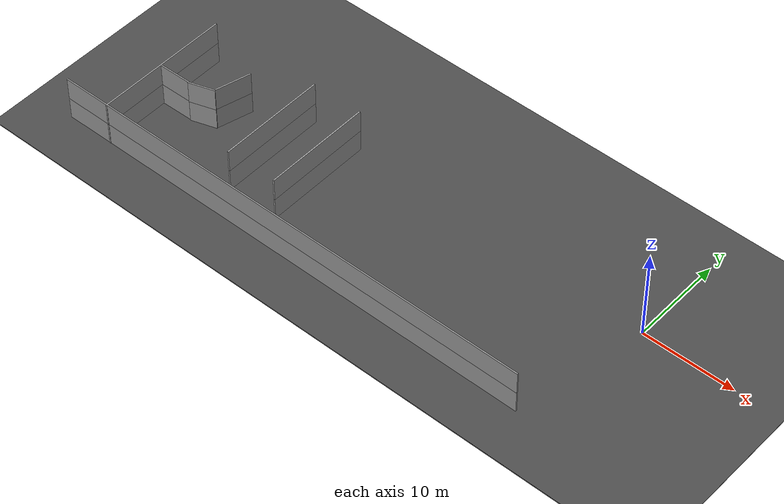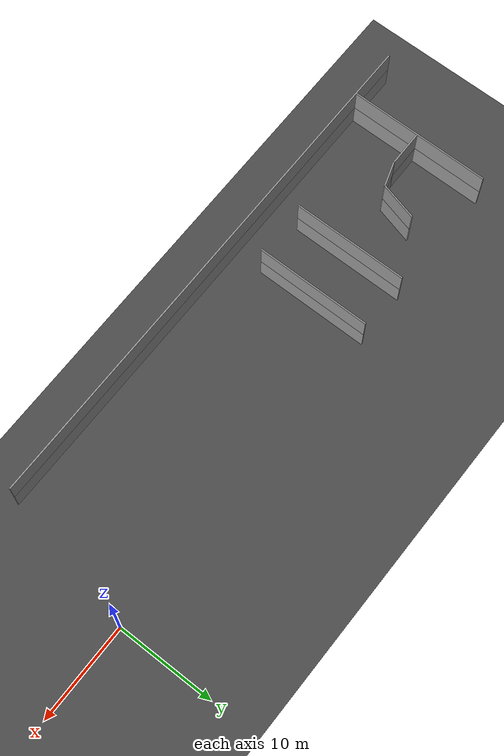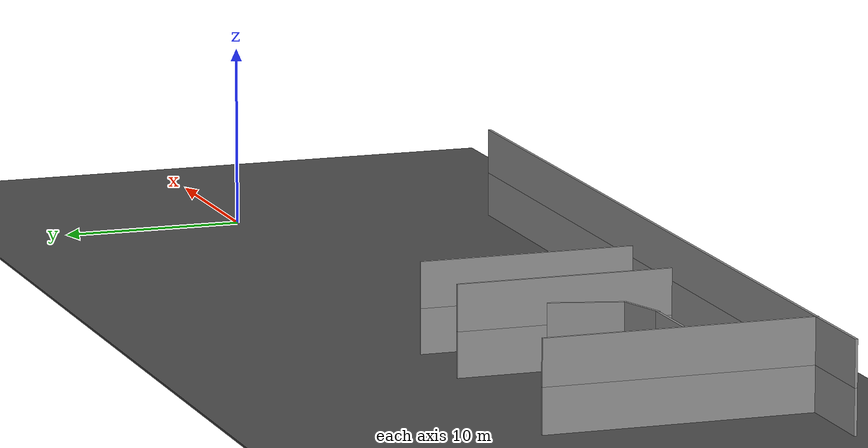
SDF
<sdf version="1.6">
 <world name="default">
  <model name="ground_plane">
   <static>1</static>
   <link name="link">
    <collision name="collision">
     <geometry><plane><normal>0 0 1</normal><size>100 100</size></plane></geometry>
     <surface>
      <contact><collide_bitmask>65535</collide_bitmask></contact>
      <friction><ode><mu>100</mu><mu2>50</mu2></ode></friction>
     </surface>
    </collision>
    <visual name="visual">
     <cast_shadows>0</cast_shadows>
     <geometry><plane><normal>0 0 1</normal><size>100 100</size></plane></geometry>
     <material>
      <script><uri>file://media/materials/scripts/gazebo.material</uri><name>Gazebo/Grey</name></script>
     </material>
    </visual>
   </link>
  </model>
  <model name="asphalt_plane">
   <static>1</static>
   <link name="link">
    <collision name="collision"><geometry><box><size>200 200 0.1</size></box></geometry></collision>
    <visual name="visual">
     <cast_shadows>0</cast_shadows>
     <geometry><box><size>200 200 0.1</size></box></geometry>
     <material>
      <script>
       <uri>model://asphalt_plane/materials/scripts</uri>
       <uri>model://asphalt_plane/materials/textures</uri>
       <name>vrc/asphalt</name>
      </script>
     </material>
    </visual>
   </link>
  </model>
  <model name="Biggest">
   <link name="Wall_101">
    <pose>-20.1199 -7.02638 0 0 0 -3.12807</pose>
    <visual name="Wall_101_Visual">
     <pose>0 0 1.25 0 -0 0</pose>
     <geometry><box><size>3.63056 0.15 2.5</size></box></geometry>
     <material>
      <script><uri>file://media/materials/scripts/gazebo.material</uri><name>Gazebo/Grey</name></script>
      <ambient>1 1 1 1</ambient>
     </material>
     <meta><layer>0</layer></meta>
    </visual>
    <collision name="Wall_101_Collision">
     <pose>0 0 1.25 0 -0 0</pose>
     <geometry><box><size>3.63056 0.15 2.5</size></box></geometry>
     <surface>
      <friction>
       <ode><mu>1</mu><mu2>1</mu2><fdir1>0 0 0</fdir1><slip1>0</slip1><slip2>0</slip2></ode>
       <torsional>
        <coefficient>1</coefficient>
        <patch_radius>0</patch_radius>
        <surface_radius>0</surface_radius>
        <use_patch_radius>1</use_patch_radius>
        <ode><slip>0</slip></ode>
       </torsional>
      </friction>
      <bounce><restitution_coefficient>0</restitution_coefficient><threshold>1e+06</threshold></bounce>
      <contact>
       <collide_without_contact>0</collide_without_contact>
       <collide_without_contact_bitmask>1</collide_without_contact_bitmask>
       <collide_bitmask>1</collide_bitmask>
       <ode>
        <soft_cfm>0</soft_cfm>
        <soft_erp>0.2</soft_erp>
        <kp>1e+13</kp>
        <kd>1</kd>
        <max_vel>0.01</max_vel>
        <min_depth>0</min_depth>
       </ode>
       <bullet>
        <split_impulse>1</split_impulse>
        <split_impulse_penetration_threshold>-0.01</split_impulse_penetration_threshold>
        <soft_cfm>0</soft_cfm>
        <soft_erp>0.2</soft_erp>
        <kp>1e+13</kp>
        <kd>1</kd>
       </bullet>
      </contact>
     </surface>
    </collision>
   </link>
   <link name="Wall_103">
    <pose>-9.33292 -5.35177 0 0 0 -1.5708</pose>
    <visual name="Wall_103_Visual">
     <pose>0 0 1.25 0 -0 0</pose>
     <geometry><box><size>11.75 0.15 2.5</size></box></geometry>
     <material>
      <script><uri>file://media/materials/scripts/gazebo.material</uri><name>Gazebo/Grey</name></script>
      <ambient>1 1 1 1</ambient>
     </material>
     <meta><layer>0</layer></meta>
    </visual>
    <collision name="Wall_103_Collision">
     <pose>0 0 1.25 0 -0 0</pose>
     <geometry><box><size>11.75 0.15 2.5</size></box></geometry>
     <surface>
      <friction>
       <ode><mu>1</mu><mu2>1</mu2><fdir1>0 0 0</fdir1><slip1>0</slip1><slip2>0</slip2></ode>
       <torsional>
        <coefficient>1</coefficient>
        <patch_radius>0</patch_radius>
        <surface_radius>0</surface_radius>
        <use_patch_radius>1</use_patch_radius>
        <ode><slip>0</slip></ode>
       </torsional>
      </friction>
      <bounce><restitution_coefficient>0</restitution_coefficient><threshold>1e+06</threshold></bounce>
      <contact>
       <collide_without_contact>0</collide_without_contact>
       <collide_without_contact_bitmask>1</collide_without_contact_bitmask>
       <collide_bitmask>1</collide_bitmask>
       <ode>
        <soft_cfm>0</soft_cfm>
        <soft_erp>0.2</soft_erp>
        <kp>1e+13</kp>
        <kd>1</kd>
        <max_vel>0.01</max_vel>
        <min_depth>0</min_depth>
       </ode>
       <bullet>
        <split_impulse>1</split_impulse>
        <split_impulse_penetration_threshold>-0.01</split_impulse_penetration_threshold>
        <soft_cfm>0</soft_cfm>
        <soft_erp>0.2</soft_erp>
        <kp>1e+13</kp>
        <kd>1</kd>
       </bullet>
      </contact>
     </surface>
    </collision>
   </link>
   <link name="Wall_106">
    <pose>-3.73234 -5.28954 0 0 0 -1.5708</pose>
    <visual name="Wall_106_Visual">
     <pose>0 0 1.25 0 -0 0</pose>
     <geometry><box><size>11.75 0.15 2.5</size></box></geometry>
     <material>
      <script><uri>file://media/materials/scripts/gazebo.material</uri><name>Gazebo/Grey</name></script>
      <ambient>1 1 1 1</ambient>
     </material>
     <meta><layer>0</layer></meta>
    </visual>
    <collision name="Wall_106_Collision">
     <pose>0 0 1.25 0 -0 0</pose>
     <geometry><box><size>11.75 0.15 2.5</size></box></geometry>
     <surface>
      <friction>
       <ode><mu>1</mu><mu2>1</mu2><fdir1>0 0 0</fdir1><slip1>0</slip1><slip2>0</slip2></ode>
       <torsional>
        <coefficient>1</coefficient>
        <patch_radius>0</patch_radius>
        <surface_radius>0</surface_radius>
        <use_patch_radius>1</use_patch_radius>
        <ode><slip>0</slip></ode>
       </torsional>
      </friction>
      <bounce><restitution_coefficient>0</restitution_coefficient><threshold>1e+06</threshold></bounce>
      <contact>
       <collide_without_contact>0</collide_without_contact>
       <collide_without_contact_bitmask>1</collide_without_contact_bitmask>
       <collide_bitmask>1</collide_bitmask>
       <ode>
        <soft_cfm>0</soft_cfm>
        <soft_erp>0.2</soft_erp>
        <kp>1e+13</kp>
        <kd>1</kd>
        <max_vel>0.01</max_vel>
        <min_depth>0</min_depth>
       </ode>
       <bullet>
        <split_impulse>1</split_impulse>
        <split_impulse_penetration_threshold>-0.01</split_impulse_penetration_threshold>
        <soft_cfm>0</soft_cfm>
        <soft_erp>0.2</soft_erp>
        <kp>1e+13</kp>
        <kd>1</kd>
       </bullet>
      </contact>
     </surface>
    </collision>
   </link>
   <link name="Wall_120">
    <pose>-0.021436 -14.1647 2.5 0 -0 3.14159</pose>
    <visual name="Wall_120_Visual">
     <pose>0 0 1.25 0 -0 0</pose>
     <geometry><box><size>54.5 0.15 2.5</size></box></geometry>
     <material>
      <script><uri>file://media/materials/scripts/gazebo.material</uri><name>Gazebo/Grey</name></script>
      <ambient>1 1 1 1</ambient>
     </material>
     <meta><layer>1</layer></meta>
    </visual>
    <collision name="Wall_120_Collision">
     <pose>0 0 1.25 0 -0 0</pose>
     <geometry><box><size>54.5 0.15 2.5</size></box></geometry>
     <surface>
      <friction>
       <ode><mu>1</mu><mu2>1</mu2><fdir1>0 0 0</fdir1><slip1>0</slip1><slip2>0</slip2></ode>
       <torsional>
        <coefficient>1</coefficient>
        <patch_radius>0</patch_radius>
        <surface_radius>0</surface_radius>
        <use_patch_radius>1</use_patch_radius>
        <ode><slip>0</slip></ode>
       </torsional>
      </friction>
      <bounce><restitution_coefficient>0</restitution_coefficient><threshold>1e+06</threshold></bounce>
      <contact>
       <collide_without_contact>0</collide_without_contact>
       <collide_without_contact_bitmask>1</collide_without_contact_bitmask>
       <collide_bitmask>1</collide_bitmask>
       <ode>
        <soft_cfm>0</soft_cfm>
        <soft_erp>0.2</soft_erp>
        <kp>1e+13</kp>
        <kd>1</kd>
        <max_vel>0.01</max_vel>
        <min_depth>0</min_depth>
       </ode>
       <bullet>
        <split_impulse>1</split_impulse>
        <split_impulse_penetration_threshold>-0.01</split_impulse_penetration_threshold>
        <soft_cfm>0</soft_cfm>
        <soft_erp>0.2</soft_erp>
        <kp>1e+13</kp>
        <kd>1</kd>
       </bullet>
      </contact>
     </surface>
    </collision>
   </link>
   <link name="Wall_124">
    <pose>-22.0129 -6.89098 2.5 0 0 -1.5708</pose>
    <visual name="Wall_124_Visual">
     <pose>0 0 1.25 0 -0 0</pose>
     <geometry><box><size>14.75 0.15 2.5</size></box></geometry>
     <material>
      <script><uri>file://media/materials/scripts/gazebo.material</uri><name>Gazebo/Grey</name></script>
      <ambient>1 1 1 1</ambient>
     </material>
     <meta><layer>1</layer></meta>
    </visual>
    <collision name="Wall_124_Collision">
     <pose>0 0 1.25 0 -0 0</pose>
     <geometry><box><size>14.75 0.15 2.5</size></box></geometry>
     <surface>
      <friction>
       <ode><mu>1</mu><mu2>1</mu2><fdir1>0 0 0</fdir1><slip1>0</slip1><slip2>0</slip2></ode>
       <torsional>
        <coefficient>1</coefficient>
        <patch_radius>0</patch_radius>
        <surface_radius>0</surface_radius>
        <use_patch_radius>1</use_patch_radius>
        <ode><slip>0</slip></ode>
       </torsional>
      </friction>
      <bounce><restitution_coefficient>0</restitution_coefficient><threshold>1e+06</threshold></bounce>
      <contact>
       <collide_without_contact>0</collide_without_contact>
       <collide_without_contact_bitmask>1</collide_without_contact_bitmask>
       <collide_bitmask>1</collide_bitmask>
       <ode>
        <soft_cfm>0</soft_cfm>
        <soft_erp>0.2</soft_erp>
        <kp>1e+13</kp>
        <kd>1</kd>
        <max_vel>0.01</max_vel>
        <min_depth>0</min_depth>
       </ode>
       <bullet>
        <split_impulse>1</split_impulse>
        <split_impulse_penetration_threshold>-0.01</split_impulse_penetration_threshold>
        <soft_cfm>0</soft_cfm>
        <soft_erp>0.2</soft_erp>
        <kp>1e+13</kp>
        <kd>1</kd>
       </bullet>
      </contact>
     </surface>
    </collision>
   </link>
   <link name="Wall_126">
    <pose>-15.3323 -4.31689 2.5 0 0 -1.83306</pose>
    <visual name="Wall_126_Visual">
     <pose>0 0 1.25 0 -0 0</pose>
     <geometry><box><size>4.00187 0.15 2.5</size></box></geometry>
     <material>
      <script><uri>file://media/materials/scripts/gazebo.material</uri><name>Gazebo/Grey</name></script>
      <ambient>1 1 1 1</ambient>
     </material>
     <meta><layer>1</layer></meta>
    </visual>
    <collision name="Wall_126_Collision">
     <pose>0 0 1.25 0 -0 0</pose>
     <geometry><box><size>4.00187 0.15 2.5</size></box></geometry>
     <surface>
      <friction>
       <ode><mu>1</mu><mu2>1</mu2><fdir1>0 0 0</fdir1><slip1>0</slip1><slip2>0</slip2></ode>
       <torsional>
        <coefficient>1</coefficient>
        <patch_radius>0</patch_radius>
        <surface_radius>0</surface_radius>
        <use_patch_radius>1</use_patch_radius>
        <ode><slip>0</slip></ode>
       </torsional>
      </friction>
      <bounce><restitution_coefficient>0</restitution_coefficient><threshold>1e+06</threshold></bounce>
      <contact>
       <collide_without_contact>0</collide_without_contact>
       <collide_without_contact_bitmask>1</collide_without_contact_bitmask>
       <collide_bitmask>1</collide_bitmask>
       <ode>
        <soft_cfm>0</soft_cfm>
        <soft_erp>0.2</soft_erp>
        <kp>1e+13</kp>
        <kd>1</kd>
        <max_vel>0.01</max_vel>
        <min_depth>0</min_depth>
       </ode>
       <bullet>
        <split_impulse>1</split_impulse>
        <split_impulse_penetration_threshold>-0.01</split_impulse_penetration_threshold>
        <soft_cfm>0</soft_cfm>
        <soft_erp>0.2</soft_erp>
        <kp>1e+13</kp>
        <kd>1</kd>
       </bullet>
      </contact>
     </surface>
    </collision>
   </link>
   <link name="Wall_127">
    <pose>-17.1059 -6.63697 2.5 0 0 -2.82822</pose>
    <visual name="Wall_127_Visual">
     <pose>0 0 1.25 0 -0 0</pose>
     <geometry><box><size>2.82916 0.15 2.5</size></box></geometry>
     <material>
      <script><uri>file://media/materials/scripts/gazebo.material</uri><name>Gazebo/Grey</name></script>
      <ambient>1 1 1 1</ambient>
     </material>
     <meta><layer>1</layer></meta>
    </visual>
    <collision name="Wall_127_Collision">
     <pose>0 0 1.25 0 -0 0</pose>
     <geometry><box><size>2.82916 0.15 2.5</size></box></geometry>
     <surface>
      <friction>
       <ode><mu>1</mu><mu2>1</mu2><fdir1>0 0 0</fdir1><slip1>0</slip1><slip2>0</slip2></ode>
       <torsional>
        <coefficient>1</coefficient>
        <patch_radius>0</patch_radius>
        <surface_radius>0</surface_radius>
        <use_patch_radius>1</use_patch_radius>
        <ode><slip>0</slip></ode>
       </torsional>
      </friction>
      <bounce><restitution_coefficient>0</restitution_coefficient><threshold>1e+06</threshold></bounce>
      <contact>
       <collide_without_contact>0</collide_without_contact>
       <collide_without_contact_bitmask>1</collide_without_contact_bitmask>
       <collide_bitmask>1</collide_bitmask>
       <ode>
        <soft_cfm>0</soft_cfm>
        <soft_erp>0.2</soft_erp>
        <kp>1e+13</kp>
        <kd>1</kd>
        <max_vel>0.01</max_vel>
        <min_depth>0</min_depth>
       </ode>
       <bullet>
        <split_impulse>1</split_impulse>
        <split_impulse_penetration_threshold>-0.01</split_impulse_penetration_threshold>
        <soft_cfm>0</soft_cfm>
        <soft_erp>0.2</soft_erp>
        <kp>1e+13</kp>
        <kd>1</kd>
       </bullet>
      </contact>
     </surface>
    </collision>
   </link>
   <link name="Wall_128">
    <pose>-20.1199 -7.02638 2.5 0 0 -3.12807</pose>
    <visual name="Wall_128_Visual">
     <pose>0 0 1.25 0 -0 0</pose>
     <geometry><box><size>3.62961 0.15 2.5</size></box></geometry>
     <material>
      <script><uri>file://media/materials/scripts/gazebo.material</uri><name>Gazebo/Grey</name></script>
      <ambient>1 1 1 1</ambient>
     </material>
     <meta><layer>1</layer></meta>
    </visual>
    <collision name="Wall_128_Collision">
     <pose>0 0 1.25 0 -0 0</pose>
     <geometry><box><size>3.62961 0.15 2.5</size></box></geometry>
     <surface>
      <friction>
       <ode><mu>1</mu><mu2>1</mu2><fdir1>0 0 0</fdir1><slip1>0</slip1><slip2>0</slip2></ode>
       <torsional>
        <coefficient>1</coefficient>
        <patch_radius>0</patch_radius>
        <surface_radius>0</surface_radius>
        <use_patch_radius>1</use_patch_radius>
        <ode><slip>0</slip></ode>
       </torsional>
      </friction>
      <bounce><restitution_coefficient>0</restitution_coefficient><threshold>1e+06</threshold></bounce>
      <contact>
       <collide_without_contact>0</collide_without_contact>
       <collide_without_contact_bitmask>1</collide_without_contact_bitmask>
       <collide_bitmask>1</collide_bitmask>
       <ode>
        <soft_cfm>0</soft_cfm>
        <soft_erp>0.2</soft_erp>
        <kp>1e+13</kp>
        <kd>1</kd>
        <max_vel>0.01</max_vel>
        <min_depth>0</min_depth>
       </ode>
       <bullet>
        <split_impulse>1</split_impulse>
        <split_impulse_penetration_threshold>-0.01</split_impulse_penetration_threshold>
        <soft_cfm>0</soft_cfm>
        <soft_erp>0.2</soft_erp>
        <kp>1e+13</kp>
        <kd>1</kd>
       </bullet>
      </contact>
     </surface>
    </collision>
   </link>
   <link name="Wall_129">
    <pose>-9.33292 -5.35177 2.5 0 0 -1.5708</pose>
    <visual name="Wall_129_Visual">
     <pose>0 0 1.25 0 -0 0</pose>
     <geometry><box><size>11.75 0.15 2.5</size></box></geometry>
     <material>
      <script><uri>file://media/materials/scripts/gazebo.material</uri><name>Gazebo/Grey</name></script>
      <ambient>1 1 1 1</ambient>
     </material>
     <meta><layer>1</layer></meta>
    </visual>
    <collision name="Wall_129_Collision">
     <pose>0 0 1.25 0 -0 0</pose>
     <geometry><box><size>11.75 0.15 2.5</size></box></geometry>
     <surface>
      <friction>
       <ode><mu>1</mu><mu2>1</mu2><fdir1>0 0 0</fdir1><slip1>0</slip1><slip2>0</slip2></ode>
       <torsional>
        <coefficient>1</coefficient>
        <patch_radius>0</patch_radius>
        <surface_radius>0</surface_radius>
        <use_patch_radius>1</use_patch_radius>
        <ode><slip>0</slip></ode>
       </torsional>
      </friction>
      <bounce><restitution_coefficient>0</restitution_coefficient><threshold>1e+06</threshold></bounce>
      <contact>
       <collide_without_contact>0</collide_without_contact>
       <collide_without_contact_bitmask>1</collide_without_contact_bitmask>
       <collide_bitmask>1</collide_bitmask>
       <ode>
        <soft_cfm>0</soft_cfm>
        <soft_erp>0.2</soft_erp>
        <kp>1e+13</kp>
        <kd>1</kd>
        <max_vel>0.01</max_vel>
        <min_depth>0</min_depth>
       </ode>
       <bullet>
        <split_impulse>1</split_impulse>
        <split_impulse_penetration_threshold>-0.01</split_impulse_penetration_threshold>
        <soft_cfm>0</soft_cfm>
        <soft_erp>0.2</soft_erp>
        <kp>1e+13</kp>
        <kd>1</kd>
       </bullet>
      </contact>
     </surface>
    </collision>
   </link>
   <link name="Wall_131">
    <pose>-3.73234 -5.28954 2.5 0 0 -1.5708</pose>
    <visual name="Wall_131_Visual">
     <pose>0 0 1.25 0 -0 0</pose>
     <geometry><box><size>11.75 0.15 2.5</size></box></geometry>
     <material>
      <script><uri>file://media/materials/scripts/gazebo.material</uri><name>Gazebo/Grey</name></script>
      <ambient>1 1 1 1</ambient>
     </material>
     <meta><layer>1</layer></meta>
    </visual>
    <collision name="Wall_131_Collision">
     <pose>0 0 1.25 0 -0 0</pose>
     <geometry><box><size>11.75 0.15 2.5</size></box></geometry>
     <surface>
      <friction>
       <ode><mu>1</mu><mu2>1</mu2><fdir1>0 0 0</fdir1><slip1>0</slip1><slip2>0</slip2></ode>
       <torsional>
        <coefficient>1</coefficient>
        <patch_radius>0</patch_radius>
        <surface_radius>0</surface_radius>
        <use_patch_radius>1</use_patch_radius>
        <ode><slip>0</slip></ode>
       </torsional>
      </friction>
      <bounce><restitution_coefficient>0</restitution_coefficient><threshold>1e+06</threshold></bounce>
      <contact>
       <collide_without_contact>0</collide_without_contact>
       <collide_without_contact_bitmask>1</collide_without_contact_bitmask>
       <collide_bitmask>1</collide_bitmask>
       <ode>
        <soft_cfm>0</soft_cfm>
        <soft_erp>0.2</soft_erp>
        <kp>1e+13</kp>
        <kd>1</kd>
        <max_vel>0.01</max_vel>
        <min_depth>0</min_depth>
       </ode>
       <bullet>
        <split_impulse>1</split_impulse>
        <split_impulse_penetration_threshold>-0.01</split_impulse_penetration_threshold>
        <soft_cfm>0</soft_cfm>
        <soft_erp>0.2</soft_erp>
        <kp>1e+13</kp>
        <kd>1</kd>
       </bullet>
      </contact>
     </surface>
    </collision>
   </link>
   <link name="Wall_85">
    <pose>-0.021435 -14.1647 0 0 -0 3.14159</pose>
    <visual name="Wall_85_Visual">
     <pose>0 0 1.25 0 -0 0</pose>
     <geometry><box><size>54.5 0.15 2.5</size></box></geometry>
     <material>
      <script><uri>file://media/materials/scripts/gazebo.material</uri><name>Gazebo/Grey</name></script>
      <ambient>1 1 1 1</ambient>
     </material>
     <meta><layer>0</layer></meta>
    </visual>
    <collision name="Wall_85_Collision">
     <pose>0 0 1.25 0 -0 0</pose>
     <geometry><box><size>54.5 0.15 2.5</size></box></geometry>
     <surface>
      <friction>
       <ode><mu>1</mu><mu2>1</mu2><fdir1>0 0 0</fdir1><slip1>0</slip1><slip2>0</slip2></ode>
       <torsional>
        <coefficient>1</coefficient>
        <patch_radius>0</patch_radius>
        <surface_radius>0</surface_radius>
        <use_patch_radius>1</use_patch_radius>
        <ode><slip>0</slip></ode>
       </torsional>
      </friction>
      <bounce><restitution_coefficient>0</restitution_coefficient><threshold>1e+06</threshold></bounce>
      <contact>
       <collide_without_contact>0</collide_without_contact>
       <collide_without_contact_bitmask>1</collide_without_contact_bitmask>
       <collide_bitmask>1</collide_bitmask>
       <ode>
        <soft_cfm>0</soft_cfm>
        <soft_erp>0.2</soft_erp>
        <kp>1e+13</kp>
        <kd>1</kd>
        <max_vel>0.01</max_vel>
        <min_depth>0</min_depth>
       </ode>
       <bullet>
        <split_impulse>1</split_impulse>
        <split_impulse_penetration_threshold>-0.01</split_impulse_penetration_threshold>
        <soft_cfm>0</soft_cfm>
        <soft_erp>0.2</soft_erp>
        <kp>1e+13</kp>
        <kd>1</kd>
       </bullet>
      </contact>
     </surface>
    </collision>
   </link>
   <link name="Wall_94">
    <pose>-22.0129 -6.89097 0 0 0 -1.5708</pose>
    <visual name="Wall_94_Visual">
     <pose>0 0 1.25 0 -0 0</pose>
     <geometry><box><size>14.75 0.15 2.5</size></box></geometry>
     <material>
      <script><uri>file://media/materials/scripts/gazebo.material</uri><name>Gazebo/Grey</name></script>
      <ambient>1 1 1 1</ambient>
     </material>
     <meta><layer>0</layer></meta>
    </visual>
    <collision name="Wall_94_Collision">
     <pose>0 0 1.25 0 -0 0</pose>
     <geometry><box><size>14.75 0.15 2.5</size></box></geometry>
     <surface>
      <friction>
       <ode><mu>1</mu><mu2>1</mu2><fdir1>0 0 0</fdir1><slip1>0</slip1><slip2>0</slip2></ode>
       <torsional>
        <coefficient>1</coefficient>
        <patch_radius>0</patch_radius>
        <surface_radius>0</surface_radius>
        <use_patch_radius>1</use_patch_radius>
        <ode><slip>0</slip></ode>
       </torsional>
      </friction>
      <bounce><restitution_coefficient>0</restitution_coefficient><threshold>1e+06</threshold></bounce>
      <contact>
       <collide_without_contact>0</collide_without_contact>
       <collide_without_contact_bitmask>1</collide_without_contact_bitmask>
       <collide_bitmask>1</collide_bitmask>
       <ode>
        <soft_cfm>0</soft_cfm>
        <soft_erp>0.2</soft_erp>
        <kp>1e+13</kp>
        <kd>1</kd>
        <max_vel>0.01</max_vel>
        <min_depth>0</min_depth>
       </ode>
       <bullet>
        <split_impulse>1</split_impulse>
        <split_impulse_penetration_threshold>-0.01</split_impulse_penetration_threshold>
        <soft_cfm>0</soft_cfm>
        <soft_erp>0.2</soft_erp>
        <kp>1e+13</kp>
        <kd>1</kd>
       </bullet>
      </contact>
     </surface>
    </collision>
   </link>
   <link name="Wall_97">
    <pose>-15.3323 -4.31689 0 0 0 -1.83306</pose>
    <visual name="Wall_97_Visual">
     <pose>0 0 1.25 0 -0 0</pose>
     <geometry><box><size>4.00187 0.15 2.5</size></box></geometry>
     <material>
      <script><uri>file://media/materials/scripts/gazebo.material</uri><name>Gazebo/Grey</name></script>
      <ambient>1 1 1 1</ambient>
     </material>
     <meta><layer>0</layer></meta>
    </visual>
    <collision name="Wall_97_Collision">
     <pose>0 0 1.25 0 -0 0</pose>
     <geometry><box><size>4.00187 0.15 2.5</size></box></geometry>
     <surface>
      <friction>
       <ode><mu>1</mu><mu2>1</mu2><fdir1>0 0 0</fdir1><slip1>0</slip1><slip2>0</slip2></ode>
       <torsional>
        <coefficient>1</coefficient>
        <patch_radius>0</patch_radius>
        <surface_radius>0</surface_radius>
        <use_patch_radius>1</use_patch_radius>
        <ode><slip>0</slip></ode>
       </torsional>
      </friction>
      <bounce><restitution_coefficient>0</restitution_coefficient><threshold>1e+06</threshold></bounce>
      <contact>
       <collide_without_contact>0</collide_without_contact>
       <collide_without_contact_bitmask>1</collide_without_contact_bitmask>
       <collide_bitmask>1</collide_bitmask>
       <ode>
        <soft_cfm>0</soft_cfm>
        <soft_erp>0.2</soft_erp>
        <kp>1e+13</kp>
        <kd>1</kd>
        <max_vel>0.01</max_vel>
        <min_depth>0</min_depth>
       </ode>
       <bullet>
        <split_impulse>1</split_impulse>
        <split_impulse_penetration_threshold>-0.01</split_impulse_penetration_threshold>
        <soft_cfm>0</soft_cfm>
        <soft_erp>0.2</soft_erp>
        <kp>1e+13</kp>
        <kd>1</kd>
       </bullet>
      </contact>
     </surface>
    </collision>
   </link>
   <link name="Wall_98">
    <pose>-17.1059 -6.63697 0 0 0 -2.82822</pose>
    <visual name="Wall_98_Visual">
     <pose>0 0 1.25 0 -0 0</pose>
     <geometry><box><size>2.82916 0.15 2.5</size></box></geometry>
     <material>
      <script><uri>file://media/materials/scripts/gazebo.material</uri><name>Gazebo/Grey</name></script>
      <ambient>1 1 1 1</ambient>
     </material>
     <meta><layer>0</layer></meta>
    </visual>
    <collision name="Wall_98_Collision">
     <pose>0 0 1.25 0 -0 0</pose>
     <geometry><box><size>2.82916 0.15 2.5</size></box></geometry>
     <surface>
      <friction>
       <ode><mu>1</mu><mu2>1</mu2><fdir1>0 0 0</fdir1><slip1>0</slip1><slip2>0</slip2></ode>
       <torsional>
        <coefficient>1</coefficient>
        <patch_radius>0</patch_radius>
        <surface_radius>0</surface_radius>
        <use_patch_radius>1</use_patch_radius>
        <ode><slip>0</slip></ode>
       </torsional>
      </friction>
      <bounce><restitution_coefficient>0</restitution_coefficient><threshold>1e+06</threshold></bounce>
      <contact>
       <collide_without_contact>0</collide_without_contact>
       <collide_without_contact_bitmask>1</collide_without_contact_bitmask>
       <collide_bitmask>1</collide_bitmask>
       <ode>
        <soft_cfm>0</soft_cfm>
        <soft_erp>0.2</soft_erp>
        <kp>1e+13</kp>
        <kd>1</kd>
        <max_vel>0.01</max_vel>
        <min_depth>0</min_depth>
       </ode>
       <bullet>
        <split_impulse>1</split_impulse>
        <split_impulse_penetration_threshold>-0.01</split_impulse_penetration_threshold>
        <soft_cfm>0</soft_cfm>
        <soft_erp>0.2</soft_erp>
        <kp>1e+13</kp>
        <kd>1</kd>
       </bullet>
      </contact>
     </surface>
    </collision>
   </link>
   <static>1</static>
   <pose>-30.023 0.02833 0 0 -0 0</pose>
  </model>
 </world>
</sdf>
